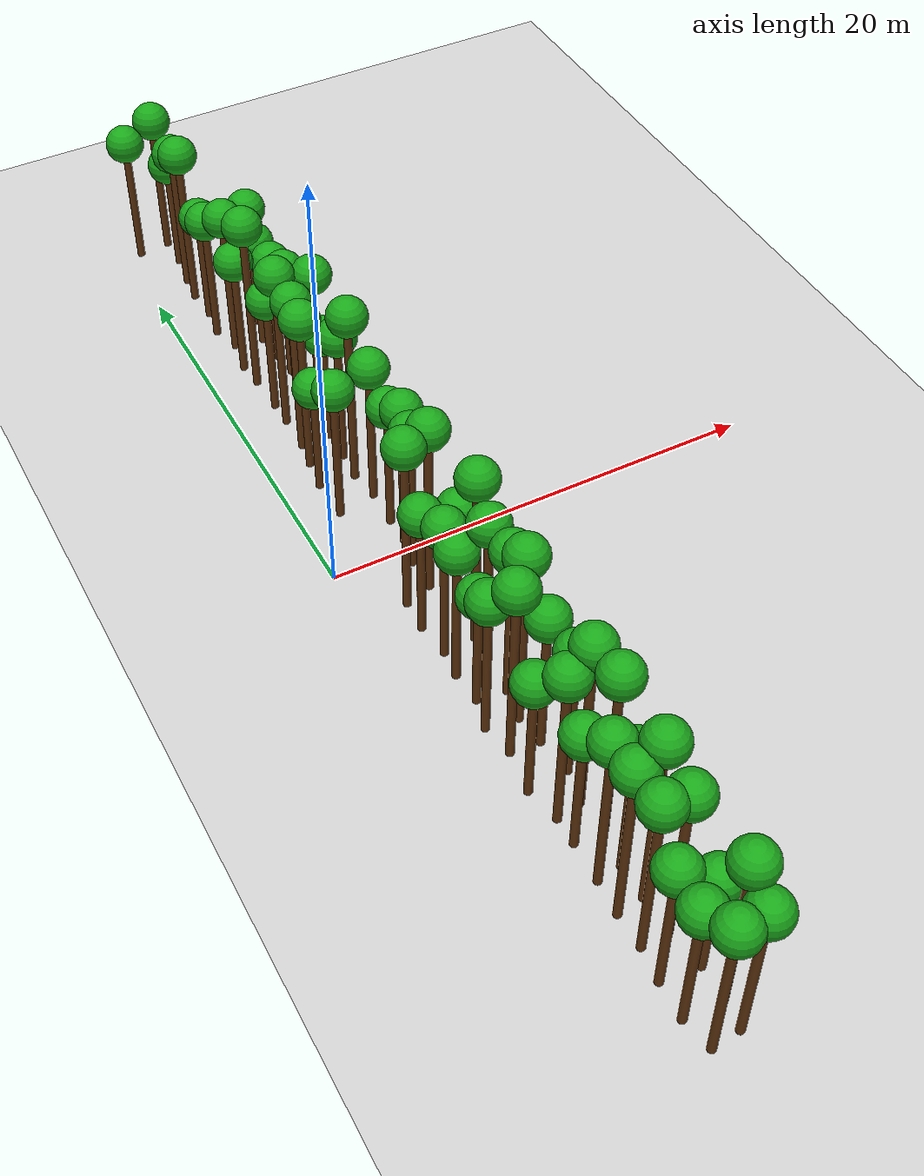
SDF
<sdf version="1.6">
 <world name="forest_world">
  <include><uri>model://sun</uri></include>
  <include><uri>model://ground_plane</uri></include>
  <model name="tree_601">
   <static>true</static>
   <link name="trunk">
    <collision name="collision">
     <pose>0.71 24.36 3.10 0 0 0</pose>
     <geometry><cylinder><radius>0.18</radius><length>6.19</length></cylinder></geometry>
    </collision>
    <visual name="trunk_visual">
     <pose>0.71 24.36 3.10 0 0 0</pose>
     <geometry><cylinder><radius>0.18</radius><length>6.19</length></cylinder></geometry>
     <material><ambient>0.35 0.20 0.05 1</ambient><diffuse>0.45 0.25 0.08 1</diffuse></material>
    </visual>
    <visual name="leaf_visual">
     <pose>0.71 24.36 6.64 0 0 0</pose>
     <geometry><sphere><radius>0.9</radius></sphere></geometry>
     <material><ambient>0.05 0.45 0.05 1</ambient><diffuse>0.10 0.65 0.10 1</diffuse></material>
    </visual>
   </link>
  </model>
  <model name="tree_602">
   <static>true</static>
   <link name="trunk">
    <collision name="collision">
     <pose>2.20 -24.98 3.59 0 0 0</pose>
     <geometry><cylinder><radius>0.18</radius><length>7.18</length></cylinder></geometry>
    </collision>
    <visual name="trunk_visual">
     <pose>2.20 -24.98 3.59 0 0 0</pose>
     <geometry><cylinder><radius>0.18</radius><length>7.18</length></cylinder></geometry>
     <material><ambient>0.35 0.20 0.05 1</ambient><diffuse>0.45 0.25 0.08 1</diffuse></material>
    </visual>
    <visual name="leaf_visual">
     <pose>2.20 -24.98 7.63 0 0 0</pose>
     <geometry><sphere><radius>0.9</radius></sphere></geometry>
     <material><ambient>0.05 0.45 0.05 1</ambient><diffuse>0.10 0.65 0.10 1</diffuse></material>
    </visual>
   </link>
  </model>
  <model name="tree_603">
   <static>true</static>
   <link name="trunk">
    <collision name="collision">
     <pose>1.91 -23.63 3.26 0 0 0</pose>
     <geometry><cylinder><radius>0.18</radius><length>6.51</length></cylinder></geometry>
    </collision>
    <visual name="trunk_visual">
     <pose>1.91 -23.63 3.26 0 0 0</pose>
     <geometry><cylinder><radius>0.18</radius><length>6.51</length></cylinder></geometry>
     <material><ambient>0.35 0.20 0.05 1</ambient><diffuse>0.45 0.25 0.08 1</diffuse></material>
    </visual>
    <visual name="leaf_visual">
     <pose>1.91 -23.63 6.96 0 0 0</pose>
     <geometry><sphere><radius>0.9</radius></sphere></geometry>
     <material><ambient>0.05 0.45 0.05 1</ambient><diffuse>0.10 0.65 0.10 1</diffuse></material>
    </visual>
   </link>
  </model>
  <model name="tree_604">
   <static>true</static>
   <link name="trunk">
    <collision name="collision">
     <pose>1.97 -22.07 3.30 0 0 0</pose>
     <geometry><cylinder><radius>0.18</radius><length>6.59</length></cylinder></geometry>
    </collision>
    <visual name="trunk_visual">
     <pose>1.97 -22.07 3.30 0 0 0</pose>
     <geometry><cylinder><radius>0.18</radius><length>6.59</length></cylinder></geometry>
     <material><ambient>0.35 0.20 0.05 1</ambient><diffuse>0.45 0.25 0.08 1</diffuse></material>
    </visual>
    <visual name="leaf_visual">
     <pose>1.97 -22.07 7.04 0 0 0</pose>
     <geometry><sphere><radius>0.9</radius></sphere></geometry>
     <material><ambient>0.05 0.45 0.05 1</ambient><diffuse>0.10 0.65 0.10 1</diffuse></material>
    </visual>
   </link>
  </model>
  <model name="tree_605">
   <static>true</static>
   <link name="trunk">
    <collision name="collision">
     <pose>2.14 -20.65 4.13 0 0 0</pose>
     <geometry><cylinder><radius>0.18</radius><length>8.26</length></cylinder></geometry>
    </collision>
    <visual name="trunk_visual">
     <pose>2.14 -20.65 4.13 0 0 0</pose>
     <geometry><cylinder><radius>0.18</radius><length>8.26</length></cylinder></geometry>
     <material><ambient>0.35 0.20 0.05 1</ambient><diffuse>0.45 0.25 0.08 1</diffuse></material>
    </visual>
    <visual name="leaf_visual">
     <pose>2.14 -20.65 8.71 0 0 0</pose>
     <geometry><sphere><radius>0.9</radius></sphere></geometry>
     <material><ambient>0.05 0.45 0.05 1</ambient><diffuse>0.10 0.65 0.10 1</diffuse></material>
    </visual>
   </link>
  </model>
  <model name="tree_606">
   <static>true</static>
   <link name="trunk">
    <collision name="collision">
     <pose>2.10 -19.15 4.12 0 0 0</pose>
     <geometry><cylinder><radius>0.18</radius><length>8.25</length></cylinder></geometry>
    </collision>
    <visual name="trunk_visual">
     <pose>2.10 -19.15 4.12 0 0 0</pose>
     <geometry><cylinder><radius>0.18</radius><length>8.25</length></cylinder></geometry>
     <material><ambient>0.35 0.20 0.05 1</ambient><diffuse>0.45 0.25 0.08 1</diffuse></material>
    </visual>
    <visual name="leaf_visual">
     <pose>2.10 -19.15 8.70 0 0 0</pose>
     <geometry><sphere><radius>0.9</radius></sphere></geometry>
     <material><ambient>0.05 0.45 0.05 1</ambient><diffuse>0.10 0.65 0.10 1</diffuse></material>
    </visual>
   </link>
  </model>
  <model name="tree_607">
   <static>true</static>
   <link name="trunk">
    <collision name="collision">
     <pose>2.18 -17.66 3.96 0 0 0</pose>
     <geometry><cylinder><radius>0.18</radius><length>7.93</length></cylinder></geometry>
    </collision>
    <visual name="trunk_visual">
     <pose>2.18 -17.66 3.96 0 0 0</pose>
     <geometry><cylinder><radius>0.18</radius><length>7.93</length></cylinder></geometry>
     <material><ambient>0.35 0.20 0.05 1</ambient><diffuse>0.45 0.25 0.08 1</diffuse></material>
    </visual>
    <visual name="leaf_visual">
     <pose>2.18 -17.66 8.38 0 0 0</pose>
     <geometry><sphere><radius>0.9</radius></sphere></geometry>
     <material><ambient>0.05 0.45 0.05 1</ambient><diffuse>0.10 0.65 0.10 1</diffuse></material>
    </visual>
   </link>
  </model>
  <model name="tree_608">
   <static>true</static>
   <link name="trunk">
    <collision name="collision">
     <pose>2.23 -15.90 3.08 0 0 0</pose>
     <geometry><cylinder><radius>0.18</radius><length>6.15</length></cylinder></geometry>
    </collision>
    <visual name="trunk_visual">
     <pose>2.23 -15.90 3.08 0 0 0</pose>
     <geometry><cylinder><radius>0.18</radius><length>6.15</length></cylinder></geometry>
     <material><ambient>0.35 0.20 0.05 1</ambient><diffuse>0.45 0.25 0.08 1</diffuse></material>
    </visual>
    <visual name="leaf_visual">
     <pose>2.23 -15.90 6.60 0 0 0</pose>
     <geometry><sphere><radius>0.9</radius></sphere></geometry>
     <material><ambient>0.05 0.45 0.05 1</ambient><diffuse>0.10 0.65 0.10 1</diffuse></material>
    </visual>
   </link>
  </model>
  <model name="tree_609">
   <static>true</static>
   <link name="trunk">
    <collision name="collision">
     <pose>2.23 -14.69 4.01 0 0 0</pose>
     <geometry><cylinder><radius>0.18</radius><length>8.01</length></cylinder></geometry>
    </collision>
    <visual name="trunk_visual">
     <pose>2.23 -14.69 4.01 0 0 0</pose>
     <geometry><cylinder><radius>0.18</radius><length>8.01</length></cylinder></geometry>
     <material><ambient>0.35 0.20 0.05 1</ambient><diffuse>0.45 0.25 0.08 1</diffuse></material>
    </visual>
    <visual name="leaf_visual">
     <pose>2.23 -14.69 8.46 0 0 0</pose>
     <geometry><sphere><radius>0.9</radius></sphere></geometry>
     <material><ambient>0.05 0.45 0.05 1</ambient><diffuse>0.10 0.65 0.10 1</diffuse></material>
    </visual>
   </link>
  </model>
  <model name="tree_610">
   <static>true</static>
   <link name="trunk">
    <collision name="collision">
     <pose>1.88 -13.12 3.03 0 0 0</pose>
     <geometry><cylinder><radius>0.18</radius><length>6.07</length></cylinder></geometry>
    </collision>
    <visual name="trunk_visual">
     <pose>1.88 -13.12 3.03 0 0 0</pose>
     <geometry><cylinder><radius>0.18</radius><length>6.07</length></cylinder></geometry>
     <material><ambient>0.35 0.20 0.05 1</ambient><diffuse>0.45 0.25 0.08 1</diffuse></material>
    </visual>
    <visual name="leaf_visual">
     <pose>1.88 -13.12 6.52 0 0 0</pose>
     <geometry><sphere><radius>0.9</radius></sphere></geometry>
     <material><ambient>0.05 0.45 0.05 1</ambient><diffuse>0.10 0.65 0.10 1</diffuse></material>
    </visual>
   </link>
  </model>
  <model name="tree_611">
   <static>true</static>
   <link name="trunk">
    <collision name="collision">
     <pose>2.14 -11.25 4.49 0 0 0</pose>
     <geometry><cylinder><radius>0.18</radius><length>8.98</length></cylinder></geometry>
    </collision>
    <visual name="trunk_visual">
     <pose>2.14 -11.25 4.49 0 0 0</pose>
     <geometry><cylinder><radius>0.18</radius><length>8.98</length></cylinder></geometry>
     <material><ambient>0.35 0.20 0.05 1</ambient><diffuse>0.45 0.25 0.08 1</diffuse></material>
    </visual>
    <visual name="leaf_visual">
     <pose>2.14 -11.25 9.43 0 0 0</pose>
     <geometry><sphere><radius>0.9</radius></sphere></geometry>
     <material><ambient>0.05 0.45 0.05 1</ambient><diffuse>0.10 0.65 0.10 1</diffuse></material>
    </visual>
   </link>
  </model>
  <model name="tree_612">
   <static>true</static>
   <link name="trunk">
    <collision name="collision">
     <pose>1.86 -9.79 3.51 0 0 0</pose>
     <geometry><cylinder><radius>0.18</radius><length>7.03</length></cylinder></geometry>
    </collision>
    <visual name="trunk_visual">
     <pose>1.86 -9.79 3.51 0 0 0</pose>
     <geometry><cylinder><radius>0.18</radius><length>7.03</length></cylinder></geometry>
     <material><ambient>0.35 0.20 0.05 1</ambient><diffuse>0.45 0.25 0.08 1</diffuse></material>
    </visual>
    <visual name="leaf_visual">
     <pose>1.86 -9.79 7.48 0 0 0</pose>
     <geometry><sphere><radius>0.9</radius></sphere></geometry>
     <material><ambient>0.05 0.45 0.05 1</ambient><diffuse>0.10 0.65 0.10 1</diffuse></material>
    </visual>
   </link>
  </model>
  <model name="tree_613">
   <static>true</static>
   <link name="trunk">
    <collision name="collision">
     <pose>2.21 -8.44 2.89 0 0 0</pose>
     <geometry><cylinder><radius>0.18</radius><length>5.78</length></cylinder></geometry>
    </collision>
    <visual name="trunk_visual">
     <pose>2.21 -8.44 2.89 0 0 0</pose>
     <geometry><cylinder><radius>0.18</radius><length>5.78</length></cylinder></geometry>
     <material><ambient>0.35 0.20 0.05 1</ambient><diffuse>0.45 0.25 0.08 1</diffuse></material>
    </visual>
    <visual name="leaf_visual">
     <pose>2.21 -8.44 6.23 0 0 0</pose>
     <geometry><sphere><radius>0.9</radius></sphere></geometry>
     <material><ambient>0.05 0.45 0.05 1</ambient><diffuse>0.10 0.65 0.10 1</diffuse></material>
    </visual>
   </link>
  </model>
  <model name="tree_614">
   <static>true</static>
   <link name="trunk">
    <collision name="collision">
     <pose>2.08 -6.97 3.43 0 0 0</pose>
     <geometry><cylinder><radius>0.18</radius><length>6.85</length></cylinder></geometry>
    </collision>
    <visual name="trunk_visual">
     <pose>2.08 -6.97 3.43 0 0 0</pose>
     <geometry><cylinder><radius>0.18</radius><length>6.85</length></cylinder></geometry>
     <material><ambient>0.35 0.20 0.05 1</ambient><diffuse>0.45 0.25 0.08 1</diffuse></material>
    </visual>
    <visual name="leaf_visual">
     <pose>2.08 -6.97 7.30 0 0 0</pose>
     <geometry><sphere><radius>0.9</radius></sphere></geometry>
     <material><ambient>0.05 0.45 0.05 1</ambient><diffuse>0.10 0.65 0.10 1</diffuse></material>
    </visual>
   </link>
  </model>
  <model name="tree_615">
   <static>true</static>
   <link name="trunk">
    <collision name="collision">
     <pose>2.21 -5.72 3.45 0 0 0</pose>
     <geometry><cylinder><radius>0.18</radius><length>6.89</length></cylinder></geometry>
    </collision>
    <visual name="trunk_visual">
     <pose>2.21 -5.72 3.45 0 0 0</pose>
     <geometry><cylinder><radius>0.18</radius><length>6.89</length></cylinder></geometry>
     <material><ambient>0.35 0.20 0.05 1</ambient><diffuse>0.45 0.25 0.08 1</diffuse></material>
    </visual>
    <visual name="leaf_visual">
     <pose>2.21 -5.72 7.34 0 0 0</pose>
     <geometry><sphere><radius>0.9</radius></sphere></geometry>
     <material><ambient>0.05 0.45 0.05 1</ambient><diffuse>0.10 0.65 0.10 1</diffuse></material>
    </visual>
   </link>
  </model>
  <model name="tree_616">
   <static>true</static>
   <link name="trunk">
    <collision name="collision">
     <pose>2.01 -4.14 3.12 0 0 0</pose>
     <geometry><cylinder><radius>0.18</radius><length>6.24</length></cylinder></geometry>
    </collision>
    <visual name="trunk_visual">
     <pose>2.01 -4.14 3.12 0 0 0</pose>
     <geometry><cylinder><radius>0.18</radius><length>6.24</length></cylinder></geometry>
     <material><ambient>0.35 0.20 0.05 1</ambient><diffuse>0.45 0.25 0.08 1</diffuse></material>
    </visual>
    <visual name="leaf_visual">
     <pose>2.01 -4.14 6.69 0 0 0</pose>
     <geometry><sphere><radius>0.9</radius></sphere></geometry>
     <material><ambient>0.05 0.45 0.05 1</ambient><diffuse>0.10 0.65 0.10 1</diffuse></material>
    </visual>
   </link>
  </model>
  <model name="tree_617">
   <static>true</static>
   <link name="trunk">
    <collision name="collision">
     <pose>2.07 -2.70 4.26 0 0 0</pose>
     <geometry><cylinder><radius>0.18</radius><length>8.53</length></cylinder></geometry>
    </collision>
    <visual name="trunk_visual">
     <pose>2.07 -2.70 4.26 0 0 0</pose>
     <geometry><cylinder><radius>0.18</radius><length>8.53</length></cylinder></geometry>
     <material><ambient>0.35 0.20 0.05 1</ambient><diffuse>0.45 0.25 0.08 1</diffuse></material>
    </visual>
    <visual name="leaf_visual">
     <pose>2.07 -2.70 8.98 0 0 0</pose>
     <geometry><sphere><radius>0.9</radius></sphere></geometry>
     <material><ambient>0.05 0.45 0.05 1</ambient><diffuse>0.10 0.65 0.10 1</diffuse></material>
    </visual>
   </link>
  </model>
  <model name="tree_618">
   <static>true</static>
   <link name="trunk">
    <collision name="collision">
     <pose>1.84 3.27 3.37 0 0 0</pose>
     <geometry><cylinder><radius>0.18</radius><length>6.75</length></cylinder></geometry>
    </collision>
    <visual name="trunk_visual">
     <pose>1.84 3.27 3.37 0 0 0</pose>
     <geometry><cylinder><radius>0.18</radius><length>6.75</length></cylinder></geometry>
     <material><ambient>0.35 0.20 0.05 1</ambient><diffuse>0.45 0.25 0.08 1</diffuse></material>
    </visual>
    <visual name="leaf_visual">
     <pose>1.84 3.27 7.20 0 0 0</pose>
     <geometry><sphere><radius>0.9</radius></sphere></geometry>
     <material><ambient>0.05 0.45 0.05 1</ambient><diffuse>0.10 0.65 0.10 1</diffuse></material>
    </visual>
   </link>
  </model>
  <model name="tree_619">
   <static>true</static>
   <link name="trunk">
    <collision name="collision">
     <pose>1.77 5.22 2.66 0 0 0</pose>
     <geometry><cylinder><radius>0.18</radius><length>5.33</length></cylinder></geometry>
    </collision>
    <visual name="trunk_visual">
     <pose>1.77 5.22 2.66 0 0 0</pose>
     <geometry><cylinder><radius>0.18</radius><length>5.33</length></cylinder></geometry>
     <material><ambient>0.35 0.20 0.05 1</ambient><diffuse>0.45 0.25 0.08 1</diffuse></material>
    </visual>
    <visual name="leaf_visual">
     <pose>1.77 5.22 5.78 0 0 0</pose>
     <geometry><sphere><radius>0.9</radius></sphere></geometry>
     <material><ambient>0.05 0.45 0.05 1</ambient><diffuse>0.10 0.65 0.10 1</diffuse></material>
    </visual>
   </link>
  </model>
  <model name="tree_620">
   <static>true</static>
   <link name="trunk">
    <collision name="collision">
     <pose>1.94 6.63 3.97 0 0 0</pose>
     <geometry><cylinder><radius>0.18</radius><length>7.93</length></cylinder></geometry>
    </collision>
    <visual name="trunk_visual">
     <pose>1.94 6.63 3.97 0 0 0</pose>
     <geometry><cylinder><radius>0.18</radius><length>7.93</length></cylinder></geometry>
     <material><ambient>0.35 0.20 0.05 1</ambient><diffuse>0.45 0.25 0.08 1</diffuse></material>
    </visual>
    <visual name="leaf_visual">
     <pose>1.94 6.63 8.38 0 0 0</pose>
     <geometry><sphere><radius>0.9</radius></sphere></geometry>
     <material><ambient>0.05 0.45 0.05 1</ambient><diffuse>0.10 0.65 0.10 1</diffuse></material>
    </visual>
   </link>
  </model>
  <model name="tree_621">
   <static>true</static>
   <link name="trunk">
    <collision name="collision">
     <pose>2.12 7.87 3.95 0 0 0</pose>
     <geometry><cylinder><radius>0.18</radius><length>7.90</length></cylinder></geometry>
    </collision>
    <visual name="trunk_visual">
     <pose>2.12 7.87 3.95 0 0 0</pose>
     <geometry><cylinder><radius>0.18</radius><length>7.90</length></cylinder></geometry>
     <material><ambient>0.35 0.20 0.05 1</ambient><diffuse>0.45 0.25 0.08 1</diffuse></material>
    </visual>
    <visual name="leaf_visual">
     <pose>2.12 7.87 8.35 0 0 0</pose>
     <geometry><sphere><radius>0.9</radius></sphere></geometry>
     <material><ambient>0.05 0.45 0.05 1</ambient><diffuse>0.10 0.65 0.10 1</diffuse></material>
    </visual>
   </link>
  </model>
  <model name="tree_622">
   <static>true</static>
   <link name="trunk">
    <collision name="collision">
     <pose>2.15 9.66 4.00 0 0 0</pose>
     <geometry><cylinder><radius>0.18</radius><length>8.00</length></cylinder></geometry>
    </collision>
    <visual name="trunk_visual">
     <pose>2.15 9.66 4.00 0 0 0</pose>
     <geometry><cylinder><radius>0.18</radius><length>8.00</length></cylinder></geometry>
     <material><ambient>0.35 0.20 0.05 1</ambient><diffuse>0.45 0.25 0.08 1</diffuse></material>
    </visual>
    <visual name="leaf_visual">
     <pose>2.15 9.66 8.45 0 0 0</pose>
     <geometry><sphere><radius>0.9</radius></sphere></geometry>
     <material><ambient>0.05 0.45 0.05 1</ambient><diffuse>0.10 0.65 0.10 1</diffuse></material>
    </visual>
   </link>
  </model>
  <model name="tree_623">
   <static>true</static>
   <link name="trunk">
    <collision name="collision">
     <pose>2.12 10.86 2.92 0 0 0</pose>
     <geometry><cylinder><radius>0.18</radius><length>5.83</length></cylinder></geometry>
    </collision>
    <visual name="trunk_visual">
     <pose>2.12 10.86 2.92 0 0 0</pose>
     <geometry><cylinder><radius>0.18</radius><length>5.83</length></cylinder></geometry>
     <material><ambient>0.35 0.20 0.05 1</ambient><diffuse>0.45 0.25 0.08 1</diffuse></material>
    </visual>
    <visual name="leaf_visual">
     <pose>2.12 10.86 6.28 0 0 0</pose>
     <geometry><sphere><radius>0.9</radius></sphere></geometry>
     <material><ambient>0.05 0.45 0.05 1</ambient><diffuse>0.10 0.65 0.10 1</diffuse></material>
    </visual>
   </link>
  </model>
  <model name="tree_624">
   <static>true</static>
   <link name="trunk">
    <collision name="collision">
     <pose>2.03 12.73 4.30 0 0 0</pose>
     <geometry><cylinder><radius>0.18</radius><length>8.60</length></cylinder></geometry>
    </collision>
    <visual name="trunk_visual">
     <pose>2.03 12.73 4.30 0 0 0</pose>
     <geometry><cylinder><radius>0.18</radius><length>8.60</length></cylinder></geometry>
     <material><ambient>0.35 0.20 0.05 1</ambient><diffuse>0.45 0.25 0.08 1</diffuse></material>
    </visual>
    <visual name="leaf_visual">
     <pose>2.03 12.73 9.05 0 0 0</pose>
     <geometry><sphere><radius>0.9</radius></sphere></geometry>
     <material><ambient>0.05 0.45 0.05 1</ambient><diffuse>0.10 0.65 0.10 1</diffuse></material>
    </visual>
   </link>
  </model>
  <model name="tree_625">
   <static>true</static>
   <link name="trunk">
    <collision name="collision">
     <pose>1.90 13.97 2.93 0 0 0</pose>
     <geometry><cylinder><radius>0.18</radius><length>5.86</length></cylinder></geometry>
    </collision>
    <visual name="trunk_visual">
     <pose>1.90 13.97 2.93 0 0 0</pose>
     <geometry><cylinder><radius>0.18</radius><length>5.86</length></cylinder></geometry>
     <material><ambient>0.35 0.20 0.05 1</ambient><diffuse>0.45 0.25 0.08 1</diffuse></material>
    </visual>
    <visual name="leaf_visual">
     <pose>1.90 13.97 6.31 0 0 0</pose>
     <geometry><sphere><radius>0.9</radius></sphere></geometry>
     <material><ambient>0.05 0.45 0.05 1</ambient><diffuse>0.10 0.65 0.10 1</diffuse></material>
    </visual>
   </link>
  </model>
  <model name="tree_626">
   <static>true</static>
   <link name="trunk">
    <collision name="collision">
     <pose>2.15 15.59 3.54 0 0 0</pose>
     <geometry><cylinder><radius>0.18</radius><length>7.09</length></cylinder></geometry>
    </collision>
    <visual name="trunk_visual">
     <pose>2.15 15.59 3.54 0 0 0</pose>
     <geometry><cylinder><radius>0.18</radius><length>7.09</length></cylinder></geometry>
     <material><ambient>0.35 0.20 0.05 1</ambient><diffuse>0.45 0.25 0.08 1</diffuse></material>
    </visual>
    <visual name="leaf_visual">
     <pose>2.15 15.59 7.54 0 0 0</pose>
     <geometry><sphere><radius>0.9</radius></sphere></geometry>
     <material><ambient>0.05 0.45 0.05 1</ambient><diffuse>0.10 0.65 0.10 1</diffuse></material>
    </visual>
   </link>
  </model>
  <model name="tree_627">
   <static>true</static>
   <link name="trunk">
    <collision name="collision">
     <pose>1.76 16.93 3.08 0 0 0</pose>
     <geometry><cylinder><radius>0.18</radius><length>6.17</length></cylinder></geometry>
    </collision>
    <visual name="trunk_visual">
     <pose>1.76 16.93 3.08 0 0 0</pose>
     <geometry><cylinder><radius>0.18</radius><length>6.17</length></cylinder></geometry>
     <material><ambient>0.35 0.20 0.05 1</ambient><diffuse>0.45 0.25 0.08 1</diffuse></material>
    </visual>
    <visual name="leaf_visual">
     <pose>1.76 16.93 6.62 0 0 0</pose>
     <geometry><sphere><radius>0.9</radius></sphere></geometry>
     <material><ambient>0.05 0.45 0.05 1</ambient><diffuse>0.10 0.65 0.10 1</diffuse></material>
    </visual>
   </link>
  </model>
  <model name="tree_628">
   <static>true</static>
   <link name="trunk">
    <collision name="collision">
     <pose>1.95 18.35 2.70 0 0 0</pose>
     <geometry><cylinder><radius>0.18</radius><length>5.39</length></cylinder></geometry>
    </collision>
    <visual name="trunk_visual">
     <pose>1.95 18.35 2.70 0 0 0</pose>
     <geometry><cylinder><radius>0.18</radius><length>5.39</length></cylinder></geometry>
     <material><ambient>0.35 0.20 0.05 1</ambient><diffuse>0.45 0.25 0.08 1</diffuse></material>
    </visual>
    <visual name="leaf_visual">
     <pose>1.95 18.35 5.84 0 0 0</pose>
     <geometry><sphere><radius>0.9</radius></sphere></geometry>
     <material><ambient>0.05 0.45 0.05 1</ambient><diffuse>0.10 0.65 0.10 1</diffuse></material>
    </visual>
   </link>
  </model>
  <model name="tree_629">
   <static>true</static>
   <link name="trunk">
    <collision name="collision">
     <pose>1.84 19.96 3.94 0 0 0</pose>
     <geometry><cylinder><radius>0.18</radius><length>7.89</length></cylinder></geometry>
    </collision>
    <visual name="trunk_visual">
     <pose>1.84 19.96 3.94 0 0 0</pose>
     <geometry><cylinder><radius>0.18</radius><length>7.89</length></cylinder></geometry>
     <material><ambient>0.35 0.20 0.05 1</ambient><diffuse>0.45 0.25 0.08 1</diffuse></material>
    </visual>
    <visual name="leaf_visual">
     <pose>1.84 19.96 8.34 0 0 0</pose>
     <geometry><sphere><radius>0.9</radius></sphere></geometry>
     <material><ambient>0.05 0.45 0.05 1</ambient><diffuse>0.10 0.65 0.10 1</diffuse></material>
    </visual>
   </link>
  </model>
  <model name="tree_630">
   <static>true</static>
   <link name="trunk">
    <collision name="collision">
     <pose>1.96 21.25 3.57 0 0 0</pose>
     <geometry><cylinder><radius>0.18</radius><length>7.13</length></cylinder></geometry>
    </collision>
    <visual name="trunk_visual">
     <pose>1.96 21.25 3.57 0 0 0</pose>
     <geometry><cylinder><radius>0.18</radius><length>7.13</length></cylinder></geometry>
     <material><ambient>0.35 0.20 0.05 1</ambient><diffuse>0.45 0.25 0.08 1</diffuse></material>
    </visual>
    <visual name="leaf_visual">
     <pose>1.96 21.25 7.58 0 0 0</pose>
     <geometry><sphere><radius>0.9</radius></sphere></geometry>
     <material><ambient>0.05 0.45 0.05 1</ambient><diffuse>0.10 0.65 0.10 1</diffuse></material>
    </visual>
   </link>
  </model>
  <model name="tree_631">
   <static>true</static>
   <link name="trunk">
    <collision name="collision">
     <pose>2.20 22.92 2.69 0 0 0</pose>
     <geometry><cylinder><radius>0.18</radius><length>5.38</length></cylinder></geometry>
    </collision>
    <visual name="trunk_visual">
     <pose>2.20 22.92 2.69 0 0 0</pose>
     <geometry><cylinder><radius>0.18</radius><length>5.38</length></cylinder></geometry>
     <material><ambient>0.35 0.20 0.05 1</ambient><diffuse>0.45 0.25 0.08 1</diffuse></material>
    </visual>
    <visual name="leaf_visual">
     <pose>2.20 22.92 5.83 0 0 0</pose>
     <geometry><sphere><radius>0.9</radius></sphere></geometry>
     <material><ambient>0.05 0.45 0.05 1</ambient><diffuse>0.10 0.65 0.10 1</diffuse></material>
    </visual>
   </link>
  </model>
  <model name="tree_632">
   <static>true</static>
   <link name="trunk">
    <collision name="collision">
     <pose>2.20 24.54 3.46 0 0 0</pose>
     <geometry><cylinder><radius>0.18</radius><length>6.92</length></cylinder></geometry>
    </collision>
    <visual name="trunk_visual">
     <pose>2.20 24.54 3.46 0 0 0</pose>
     <geometry><cylinder><radius>0.18</radius><length>6.92</length></cylinder></geometry>
     <material><ambient>0.35 0.20 0.05 1</ambient><diffuse>0.45 0.25 0.08 1</diffuse></material>
    </visual>
    <visual name="leaf_visual">
     <pose>2.20 24.54 7.37 0 0 0</pose>
     <geometry><sphere><radius>0.9</radius></sphere></geometry>
     <material><ambient>0.05 0.45 0.05 1</ambient><diffuse>0.10 0.65 0.10 1</diffuse></material>
    </visual>
   </link>
  </model>
  <model name="tree_633">
   <static>true</static>
   <link name="trunk">
    <collision name="collision">
     <pose>3.44 -24.87 3.54 0 0 0</pose>
     <geometry><cylinder><radius>0.18</radius><length>7.07</length></cylinder></geometry>
    </collision>
    <visual name="trunk_visual">
     <pose>3.44 -24.87 3.54 0 0 0</pose>
     <geometry><cylinder><radius>0.18</radius><length>7.07</length></cylinder></geometry>
     <material><ambient>0.35 0.20 0.05 1</ambient><diffuse>0.45 0.25 0.08 1</diffuse></material>
    </visual>
    <visual name="leaf_visual">
     <pose>3.44 -24.87 7.52 0 0 0</pose>
     <geometry><sphere><radius>0.9</radius></sphere></geometry>
     <material><ambient>0.05 0.45 0.05 1</ambient><diffuse>0.10 0.65 0.10 1</diffuse></material>
    </visual>
   </link>
  </model>
  <model name="tree_634">
   <static>true</static>
   <link name="trunk">
    <collision name="collision">
     <pose>3.60 -23.63 4.01 0 0 0</pose>
     <geometry><cylinder><radius>0.18</radius><length>8.03</length></cylinder></geometry>
    </collision>
    <visual name="trunk_visual">
     <pose>3.60 -23.63 4.01 0 0 0</pose>
     <geometry><cylinder><radius>0.18</radius><length>8.03</length></cylinder></geometry>
     <material><ambient>0.35 0.20 0.05 1</ambient><diffuse>0.45 0.25 0.08 1</diffuse></material>
    </visual>
    <visual name="leaf_visual">
     <pose>3.60 -23.63 8.48 0 0 0</pose>
     <geometry><sphere><radius>0.9</radius></sphere></geometry>
     <material><ambient>0.05 0.45 0.05 1</ambient><diffuse>0.10 0.65 0.10 1</diffuse></material>
    </visual>
   </link>
  </model>
  <model name="tree_635">
   <static>true</static>
   <link name="trunk">
    <collision name="collision">
     <pose>3.60 -22.25 2.58 0 0 0</pose>
     <geometry><cylinder><radius>0.18</radius><length>5.15</length></cylinder></geometry>
    </collision>
    <visual name="trunk_visual">
     <pose>3.60 -22.25 2.58 0 0 0</pose>
     <geometry><cylinder><radius>0.18</radius><length>5.15</length></cylinder></geometry>
     <material><ambient>0.35 0.20 0.05 1</ambient><diffuse>0.45 0.25 0.08 1</diffuse></material>
    </visual>
    <visual name="leaf_visual">
     <pose>3.60 -22.25 5.60 0 0 0</pose>
     <geometry><sphere><radius>0.9</radius></sphere></geometry>
     <material><ambient>0.05 0.45 0.05 1</ambient><diffuse>0.10 0.65 0.10 1</diffuse></material>
    </visual>
   </link>
  </model>
  <model name="tree_636">
   <static>true</static>
   <link name="trunk">
    <collision name="collision">
     <pose>3.28 -20.62 4.00 0 0 0</pose>
     <geometry><cylinder><radius>0.18</radius><length>8.00</length></cylinder></geometry>
    </collision>
    <visual name="trunk_visual">
     <pose>3.28 -20.62 4.00 0 0 0</pose>
     <geometry><cylinder><radius>0.18</radius><length>8.00</length></cylinder></geometry>
     <material><ambient>0.35 0.20 0.05 1</ambient><diffuse>0.45 0.25 0.08 1</diffuse></material>
    </visual>
    <visual name="leaf_visual">
     <pose>3.28 -20.62 8.45 0 0 0</pose>
     <geometry><sphere><radius>0.9</radius></sphere></geometry>
     <material><ambient>0.05 0.45 0.05 1</ambient><diffuse>0.10 0.65 0.10 1</diffuse></material>
    </visual>
   </link>
  </model>
  <model name="tree_637">
   <static>true</static>
   <link name="trunk">
    <collision name="collision">
     <pose>3.26 -19.01 4.45 0 0 0</pose>
     <geometry><cylinder><radius>0.18</radius><length>8.90</length></cylinder></geometry>
    </collision>
    <visual name="trunk_visual">
     <pose>3.26 -19.01 4.45 0 0 0</pose>
     <geometry><cylinder><radius>0.18</radius><length>8.90</length></cylinder></geometry>
     <material><ambient>0.35 0.20 0.05 1</ambient><diffuse>0.45 0.25 0.08 1</diffuse></material>
    </visual>
    <visual name="leaf_visual">
     <pose>3.26 -19.01 9.35 0 0 0</pose>
     <geometry><sphere><radius>0.9</radius></sphere></geometry>
     <material><ambient>0.05 0.45 0.05 1</ambient><diffuse>0.10 0.65 0.10 1</diffuse></material>
    </visual>
   </link>
  </model>
  <model name="tree_638">
   <static>true</static>
   <link name="trunk">
    <collision name="collision">
     <pose>3.26 -17.52 3.30 0 0 0</pose>
     <geometry><cylinder><radius>0.18</radius><length>6.59</length></cylinder></geometry>
    </collision>
    <visual name="trunk_visual">
     <pose>3.26 -17.52 3.30 0 0 0</pose>
     <geometry><cylinder><radius>0.18</radius><length>6.59</length></cylinder></geometry>
     <material><ambient>0.35 0.20 0.05 1</ambient><diffuse>0.45 0.25 0.08 1</diffuse></material>
    </visual>
    <visual name="leaf_visual">
     <pose>3.26 -17.52 7.04 0 0 0</pose>
     <geometry><sphere><radius>0.9</radius></sphere></geometry>
     <material><ambient>0.05 0.45 0.05 1</ambient><diffuse>0.10 0.65 0.10 1</diffuse></material>
    </visual>
   </link>
  </model>
  <model name="tree_639">
   <static>true</static>
   <link name="trunk">
    <collision name="collision">
     <pose>3.50 -15.93 4.36 0 0 0</pose>
     <geometry><cylinder><radius>0.18</radius><length>8.72</length></cylinder></geometry>
    </collision>
    <visual name="trunk_visual">
     <pose>3.50 -15.93 4.36 0 0 0</pose>
     <geometry><cylinder><radius>0.18</radius><length>8.72</length></cylinder></geometry>
     <material><ambient>0.35 0.20 0.05 1</ambient><diffuse>0.45 0.25 0.08 1</diffuse></material>
    </visual>
    <visual name="leaf_visual">
     <pose>3.50 -15.93 9.17 0 0 0</pose>
     <geometry><sphere><radius>0.9</radius></sphere></geometry>
     <material><ambient>0.05 0.45 0.05 1</ambient><diffuse>0.10 0.65 0.10 1</diffuse></material>
    </visual>
   </link>
  </model>
  <model name="tree_640">
   <static>true</static>
   <link name="trunk">
    <collision name="collision">
     <pose>3.34 -14.46 4.38 0 0 0</pose>
     <geometry><cylinder><radius>0.18</radius><length>8.75</length></cylinder></geometry>
    </collision>
    <visual name="trunk_visual">
     <pose>3.34 -14.46 4.38 0 0 0</pose>
     <geometry><cylinder><radius>0.18</radius><length>8.75</length></cylinder></geometry>
     <material><ambient>0.35 0.20 0.05 1</ambient><diffuse>0.45 0.25 0.08 1</diffuse></material>
    </visual>
    <visual name="leaf_visual">
     <pose>3.34 -14.46 9.20 0 0 0</pose>
     <geometry><sphere><radius>0.9</radius></sphere></geometry>
     <material><ambient>0.05 0.45 0.05 1</ambient><diffuse>0.10 0.65 0.10 1</diffuse></material>
    </visual>
   </link>
  </model>
  <model name="tree_641">
   <static>true</static>
   <link name="trunk">
    <collision name="collision">
     <pose>3.66 -13.01 3.34 0 0 0</pose>
     <geometry><cylinder><radius>0.18</radius><length>6.67</length></cylinder></geometry>
    </collision>
    <visual name="trunk_visual">
     <pose>3.66 -13.01 3.34 0 0 0</pose>
     <geometry><cylinder><radius>0.18</radius><length>6.67</length></cylinder></geometry>
     <material><ambient>0.35 0.20 0.05 1</ambient><diffuse>0.45 0.25 0.08 1</diffuse></material>
    </visual>
    <visual name="leaf_visual">
     <pose>3.66 -13.01 7.12 0 0 0</pose>
     <geometry><sphere><radius>0.9</radius></sphere></geometry>
     <material><ambient>0.05 0.45 0.05 1</ambient><diffuse>0.10 0.65 0.10 1</diffuse></material>
    </visual>
   </link>
  </model>
  <model name="tree_642">
   <static>true</static>
   <link name="trunk">
    <collision name="collision">
     <pose>3.43 -11.36 3.44 0 0 0</pose>
     <geometry><cylinder><radius>0.18</radius><length>6.89</length></cylinder></geometry>
    </collision>
    <visual name="trunk_visual">
     <pose>3.43 -11.36 3.44 0 0 0</pose>
     <geometry><cylinder><radius>0.18</radius><length>6.89</length></cylinder></geometry>
     <material><ambient>0.35 0.20 0.05 1</ambient><diffuse>0.45 0.25 0.08 1</diffuse></material>
    </visual>
    <visual name="leaf_visual">
     <pose>3.43 -11.36 7.34 0 0 0</pose>
     <geometry><sphere><radius>0.9</radius></sphere></geometry>
     <material><ambient>0.05 0.45 0.05 1</ambient><diffuse>0.10 0.65 0.10 1</diffuse></material>
    </visual>
   </link>
  </model>
  <model name="tree_643">
   <static>true</static>
   <link name="trunk">
    <collision name="collision">
     <pose>3.25 -9.99 4.49 0 0 0</pose>
     <geometry><cylinder><radius>0.18</radius><length>8.97</length></cylinder></geometry>
    </collision>
    <visual name="trunk_visual">
     <pose>3.25 -9.99 4.49 0 0 0</pose>
     <geometry><cylinder><radius>0.18</radius><length>8.97</length></cylinder></geometry>
     <material><ambient>0.35 0.20 0.05 1</ambient><diffuse>0.45 0.25 0.08 1</diffuse></material>
    </visual>
    <visual name="leaf_visual">
     <pose>3.25 -9.99 9.42 0 0 0</pose>
     <geometry><sphere><radius>0.9</radius></sphere></geometry>
     <material><ambient>0.05 0.45 0.05 1</ambient><diffuse>0.10 0.65 0.10 1</diffuse></material>
    </visual>
   </link>
  </model>
  <model name="tree_644">
   <static>true</static>
   <link name="trunk">
    <collision name="collision">
     <pose>3.50 -8.60 3.87 0 0 0</pose>
     <geometry><cylinder><radius>0.18</radius><length>7.74</length></cylinder></geometry>
    </collision>
    <visual name="trunk_visual">
     <pose>3.50 -8.60 3.87 0 0 0</pose>
     <geometry><cylinder><radius>0.18</radius><length>7.74</length></cylinder></geometry>
     <material><ambient>0.35 0.20 0.05 1</ambient><diffuse>0.45 0.25 0.08 1</diffuse></material>
    </visual>
    <visual name="leaf_visual">
     <pose>3.50 -8.60 8.19 0 0 0</pose>
     <geometry><sphere><radius>0.9</radius></sphere></geometry>
     <material><ambient>0.05 0.45 0.05 1</ambient><diffuse>0.10 0.65 0.10 1</diffuse></material>
    </visual>
   </link>
  </model>
  <model name="tree_645">
   <static>true</static>
   <link name="trunk">
    <collision name="collision">
     <pose>3.33 -7.14 3.93 0 0 0</pose>
     <geometry><cylinder><radius>0.18</radius><length>7.86</length></cylinder></geometry>
    </collision>
    <visual name="trunk_visual">
     <pose>3.33 -7.14 3.93 0 0 0</pose>
     <geometry><cylinder><radius>0.18</radius><length>7.86</length></cylinder></geometry>
     <material><ambient>0.35 0.20 0.05 1</ambient><diffuse>0.45 0.25 0.08 1</diffuse></material>
    </visual>
    <visual name="leaf_visual">
     <pose>3.33 -7.14 8.31 0 0 0</pose>
     <geometry><sphere><radius>0.9</radius></sphere></geometry>
     <material><ambient>0.05 0.45 0.05 1</ambient><diffuse>0.10 0.65 0.10 1</diffuse></material>
    </visual>
   </link>
  </model>
  <model name="tree_646">
   <static>true</static>
   <link name="trunk">
    <collision name="collision">
     <pose>3.66 -5.61 4.37 0 0 0</pose>
     <geometry><cylinder><radius>0.18</radius><length>8.73</length></cylinder></geometry>
    </collision>
    <visual name="trunk_visual">
     <pose>3.66 -5.61 4.37 0 0 0</pose>
     <geometry><cylinder><radius>0.18</radius><length>8.73</length></cylinder></geometry>
     <material><ambient>0.35 0.20 0.05 1</ambient><diffuse>0.45 0.25 0.08 1</diffuse></material>
    </visual>
    <visual name="leaf_visual">
     <pose>3.66 -5.61 9.18 0 0 0</pose>
     <geometry><sphere><radius>0.9</radius></sphere></geometry>
     <material><ambient>0.05 0.45 0.05 1</ambient><diffuse>0.10 0.65 0.10 1</diffuse></material>
    </visual>
   </link>
  </model>
  <model name="tree_647">
   <static>true</static>
   <link name="trunk">
    <collision name="collision">
     <pose>3.67 -4.07 2.84 0 0 0</pose>
     <geometry><cylinder><radius>0.18</radius><length>5.68</length></cylinder></geometry>
    </collision>
    <visual name="trunk_visual">
     <pose>3.67 -4.07 2.84 0 0 0</pose>
     <geometry><cylinder><radius>0.18</radius><length>5.68</length></cylinder></geometry>
     <material><ambient>0.35 0.20 0.05 1</ambient><diffuse>0.45 0.25 0.08 1</diffuse></material>
    </visual>
    <visual name="leaf_visual">
     <pose>3.67 -4.07 6.13 0 0 0</pose>
     <geometry><sphere><radius>0.9</radius></sphere></geometry>
     <material><ambient>0.05 0.45 0.05 1</ambient><diffuse>0.10 0.65 0.10 1</diffuse></material>
    </visual>
   </link>
  </model>
  <model name="tree_648">
   <static>true</static>
   <link name="trunk">
    <collision name="collision">
     <pose>3.31 -2.29 4.30 0 0 0</pose>
     <geometry><cylinder><radius>0.18</radius><length>8.60</length></cylinder></geometry>
    </collision>
    <visual name="trunk_visual">
     <pose>3.31 -2.29 4.30 0 0 0</pose>
     <geometry><cylinder><radius>0.18</radius><length>8.60</length></cylinder></geometry>
     <material><ambient>0.35 0.20 0.05 1</ambient><diffuse>0.45 0.25 0.08 1</diffuse></material>
    </visual>
    <visual name="leaf_visual">
     <pose>3.31 -2.29 9.05 0 0 0</pose>
     <geometry><sphere><radius>0.9</radius></sphere></geometry>
     <material><ambient>0.05 0.45 0.05 1</ambient><diffuse>0.10 0.65 0.10 1</diffuse></material>
    </visual>
   </link>
  </model>
  <model name="tree_649">
   <static>true</static>
   <link name="trunk">
    <collision name="collision">
     <pose>3.30 -0.77 3.57 0 0 0</pose>
     <geometry><cylinder><radius>0.18</radius><length>7.15</length></cylinder></geometry>
    </collision>
    <visual name="trunk_visual">
     <pose>3.30 -0.77 3.57 0 0 0</pose>
     <geometry><cylinder><radius>0.18</radius><length>7.15</length></cylinder></geometry>
     <material><ambient>0.35 0.20 0.05 1</ambient><diffuse>0.45 0.25 0.08 1</diffuse></material>
    </visual>
    <visual name="leaf_visual">
     <pose>3.30 -0.77 7.60 0 0 0</pose>
     <geometry><sphere><radius>0.9</radius></sphere></geometry>
     <material><ambient>0.05 0.45 0.05 1</ambient><diffuse>0.10 0.65 0.10 1</diffuse></material>
    </visual>
   </link>
  </model>
  <model name="tree_650">
   <static>true</static>
   <link name="trunk">
    <collision name="collision">
     <pose>3.58 0.56 3.57 0 0 0</pose>
     <geometry><cylinder><radius>0.18</radius><length>7.14</length></cylinder></geometry>
    </collision>
    <visual name="trunk_visual">
     <pose>3.58 0.56 3.57 0 0 0</pose>
     <geometry><cylinder><radius>0.18</radius><length>7.14</length></cylinder></geometry>
     <material><ambient>0.35 0.20 0.05 1</ambient><diffuse>0.45 0.25 0.08 1</diffuse></material>
    </visual>
    <visual name="leaf_visual">
     <pose>3.58 0.56 7.59 0 0 0</pose>
     <geometry><sphere><radius>0.9</radius></sphere></geometry>
     <material><ambient>0.05 0.45 0.05 1</ambient><diffuse>0.10 0.65 0.10 1</diffuse></material>
    </visual>
   </link>
  </model>
  <model name="tree_651">
   <static>true</static>
   <link name="trunk">
    <collision name="collision">
     <pose>3.56 1.84 3.12 0 0 0</pose>
     <geometry><cylinder><radius>0.18</radius><length>6.24</length></cylinder></geometry>
    </collision>
    <visual name="trunk_visual">
     <pose>3.56 1.84 3.12 0 0 0</pose>
     <geometry><cylinder><radius>0.18</radius><length>6.24</length></cylinder></geometry>
     <material><ambient>0.35 0.20 0.05 1</ambient><diffuse>0.45 0.25 0.08 1</diffuse></material>
    </visual>
    <visual name="leaf_visual">
     <pose>3.56 1.84 6.69 0 0 0</pose>
     <geometry><sphere><radius>0.9</radius></sphere></geometry>
     <material><ambient>0.05 0.45 0.05 1</ambient><diffuse>0.10 0.65 0.10 1</diffuse></material>
    </visual>
   </link>
  </model>
  <model name="tree_652">
   <static>true</static>
   <link name="trunk">
    <collision name="collision">
     <pose>3.60 3.59 3.49 0 0 0</pose>
     <geometry><cylinder><radius>0.18</radius><length>6.98</length></cylinder></geometry>
    </collision>
    <visual name="trunk_visual">
     <pose>3.60 3.59 3.49 0 0 0</pose>
     <geometry><cylinder><radius>0.18</radius><length>6.98</length></cylinder></geometry>
     <material><ambient>0.35 0.20 0.05 1</ambient><diffuse>0.45 0.25 0.08 1</diffuse></material>
    </visual>
    <visual name="leaf_visual">
     <pose>3.60 3.59 7.43 0 0 0</pose>
     <geometry><sphere><radius>0.9</radius></sphere></geometry>
     <material><ambient>0.05 0.45 0.05 1</ambient><diffuse>0.10 0.65 0.10 1</diffuse></material>
    </visual>
   </link>
  </model>
  <model name="tree_653">
   <static>true</static>
   <link name="trunk">
    <collision name="collision">
     <pose>3.39 5.04 4.35 0 0 0</pose>
     <geometry><cylinder><radius>0.18</radius><length>8.71</length></cylinder></geometry>
    </collision>
    <visual name="trunk_visual">
     <pose>3.39 5.04 4.35 0 0 0</pose>
     <geometry><cylinder><radius>0.18</radius><length>8.71</length></cylinder></geometry>
     <material><ambient>0.35 0.20 0.05 1</ambient><diffuse>0.45 0.25 0.08 1</diffuse></material>
    </visual>
    <visual name="leaf_visual">
     <pose>3.39 5.04 9.16 0 0 0</pose>
     <geometry><sphere><radius>0.9</radius></sphere></geometry>
     <material><ambient>0.05 0.45 0.05 1</ambient><diffuse>0.10 0.65 0.10 1</diffuse></material>
    </visual>
   </link>
  </model>
  <model name="tree_654">
   <static>true</static>
   <link name="trunk">
    <collision name="collision">
     <pose>3.47 6.40 3.29 0 0 0</pose>
     <geometry><cylinder><radius>0.18</radius><length>6.58</length></cylinder></geometry>
    </collision>
    <visual name="trunk_visual">
     <pose>3.47 6.40 3.29 0 0 0</pose>
     <geometry><cylinder><radius>0.18</radius><length>6.58</length></cylinder></geometry>
     <material><ambient>0.35 0.20 0.05 1</ambient><diffuse>0.45 0.25 0.08 1</diffuse></material>
    </visual>
    <visual name="leaf_visual">
     <pose>3.47 6.40 7.03 0 0 0</pose>
     <geometry><sphere><radius>0.9</radius></sphere></geometry>
     <material><ambient>0.05 0.45 0.05 1</ambient><diffuse>0.10 0.65 0.10 1</diffuse></material>
    </visual>
   </link>
  </model>
  <model name="tree_655">
   <static>true</static>
   <link name="trunk">
    <collision name="collision">
     <pose>3.45 7.91 2.74 0 0 0</pose>
     <geometry><cylinder><radius>0.18</radius><length>5.48</length></cylinder></geometry>
    </collision>
    <visual name="trunk_visual">
     <pose>3.45 7.91 2.74 0 0 0</pose>
     <geometry><cylinder><radius>0.18</radius><length>5.48</length></cylinder></geometry>
     <material><ambient>0.35 0.20 0.05 1</ambient><diffuse>0.45 0.25 0.08 1</diffuse></material>
    </visual>
    <visual name="leaf_visual">
     <pose>3.45 7.91 5.93 0 0 0</pose>
     <geometry><sphere><radius>0.9</radius></sphere></geometry>
     <material><ambient>0.05 0.45 0.05 1</ambient><diffuse>0.10 0.65 0.10 1</diffuse></material>
    </visual>
   </link>
  </model>
  <model name="tree_656">
   <static>true</static>
   <link name="trunk">
    <collision name="collision">
     <pose>3.70 9.30 3.88 0 0 0</pose>
     <geometry><cylinder><radius>0.18</radius><length>7.76</length></cylinder></geometry>
    </collision>
    <visual name="trunk_visual">
     <pose>3.70 9.30 3.88 0 0 0</pose>
     <geometry><cylinder><radius>0.18</radius><length>7.76</length></cylinder></geometry>
     <material><ambient>0.35 0.20 0.05 1</ambient><diffuse>0.45 0.25 0.08 1</diffuse></material>
    </visual>
    <visual name="leaf_visual">
     <pose>3.70 9.30 8.21 0 0 0</pose>
     <geometry><sphere><radius>0.9</radius></sphere></geometry>
     <material><ambient>0.05 0.45 0.05 1</ambient><diffuse>0.10 0.65 0.10 1</diffuse></material>
    </visual>
   </link>
  </model>
  <model name="tree_657">
   <static>true</static>
   <link name="trunk">
    <collision name="collision">
     <pose>3.33 11.09 2.64 0 0 0</pose>
     <geometry><cylinder><radius>0.18</radius><length>5.28</length></cylinder></geometry>
    </collision>
    <visual name="trunk_visual">
     <pose>3.33 11.09 2.64 0 0 0</pose>
     <geometry><cylinder><radius>0.18</radius><length>5.28</length></cylinder></geometry>
     <material><ambient>0.35 0.20 0.05 1</ambient><diffuse>0.45 0.25 0.08 1</diffuse></material>
    </visual>
    <visual name="leaf_visual">
     <pose>3.33 11.09 5.73 0 0 0</pose>
     <geometry><sphere><radius>0.9</radius></sphere></geometry>
     <material><ambient>0.05 0.45 0.05 1</ambient><diffuse>0.10 0.65 0.10 1</diffuse></material>
    </visual>
   </link>
  </model>
  <model name="tree_658">
   <static>true</static>
   <link name="trunk">
    <collision name="collision">
     <pose>3.75 12.67 2.84 0 0 0</pose>
     <geometry><cylinder><radius>0.18</radius><length>5.67</length></cylinder></geometry>
    </collision>
    <visual name="trunk_visual">
     <pose>3.75 12.67 2.84 0 0 0</pose>
     <geometry><cylinder><radius>0.18</radius><length>5.67</length></cylinder></geometry>
     <material><ambient>0.35 0.20 0.05 1</ambient><diffuse>0.45 0.25 0.08 1</diffuse></material>
    </visual>
    <visual name="leaf_visual">
     <pose>3.75 12.67 6.12 0 0 0</pose>
     <geometry><sphere><radius>0.9</radius></sphere></geometry>
     <material><ambient>0.05 0.45 0.05 1</ambient><diffuse>0.10 0.65 0.10 1</diffuse></material>
    </visual>
   </link>
  </model>
  <model name="tree_659">
   <static>true</static>
   <link name="trunk">
    <collision name="collision">
     <pose>3.63 13.89 2.67 0 0 0</pose>
     <geometry><cylinder><radius>0.18</radius><length>5.34</length></cylinder></geometry>
    </collision>
    <visual name="trunk_visual">
     <pose>3.63 13.89 2.67 0 0 0</pose>
     <geometry><cylinder><radius>0.18</radius><length>5.34</length></cylinder></geometry>
     <material><ambient>0.35 0.20 0.05 1</ambient><diffuse>0.45 0.25 0.08 1</diffuse></material>
    </visual>
    <visual name="leaf_visual">
     <pose>3.63 13.89 5.79 0 0 0</pose>
     <geometry><sphere><radius>0.9</radius></sphere></geometry>
     <material><ambient>0.05 0.45 0.05 1</ambient><diffuse>0.10 0.65 0.10 1</diffuse></material>
    </visual>
   </link>
  </model>
  <model name="tree_660">
   <static>true</static>
   <link name="trunk">
    <collision name="collision">
     <pose>3.49 15.39 2.72 0 0 0</pose>
     <geometry><cylinder><radius>0.18</radius><length>5.43</length></cylinder></geometry>
    </collision>
    <visual name="trunk_visual">
     <pose>3.49 15.39 2.72 0 0 0</pose>
     <geometry><cylinder><radius>0.18</radius><length>5.43</length></cylinder></geometry>
     <material><ambient>0.35 0.20 0.05 1</ambient><diffuse>0.45 0.25 0.08 1</diffuse></material>
    </visual>
    <visual name="leaf_visual">
     <pose>3.49 15.39 5.88 0 0 0</pose>
     <geometry><sphere><radius>0.9</radius></sphere></geometry>
     <material><ambient>0.05 0.45 0.05 1</ambient><diffuse>0.10 0.65 0.10 1</diffuse></material>
    </visual>
   </link>
  </model>
  <model name="tree_661">
   <static>true</static>
   <link name="trunk">
    <collision name="collision">
     <pose>3.75 16.80 3.15 0 0 0</pose>
     <geometry><cylinder><radius>0.18</radius><length>6.30</length></cylinder></geometry>
    </collision>
    <visual name="trunk_visual">
     <pose>3.75 16.80 3.15 0 0 0</pose>
     <geometry><cylinder><radius>0.18</radius><length>6.30</length></cylinder></geometry>
     <material><ambient>0.35 0.20 0.05 1</ambient><diffuse>0.45 0.25 0.08 1</diffuse></material>
    </visual>
    <visual name="leaf_visual">
     <pose>3.75 16.80 6.75 0 0 0</pose>
     <geometry><sphere><radius>0.9</radius></sphere></geometry>
     <material><ambient>0.05 0.45 0.05 1</ambient><diffuse>0.10 0.65 0.10 1</diffuse></material>
    </visual>
   </link>
  </model>
 </world>
</sdf>
